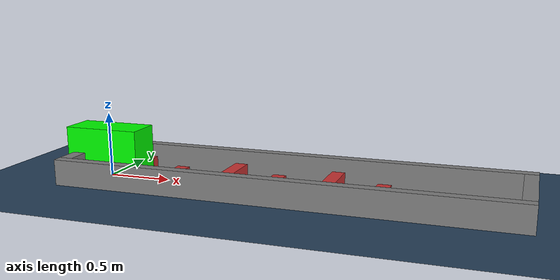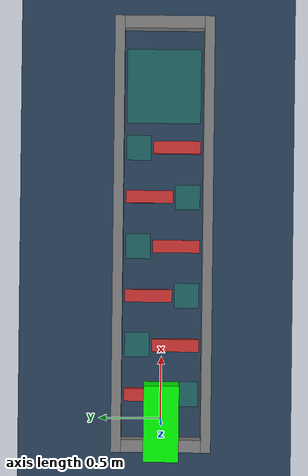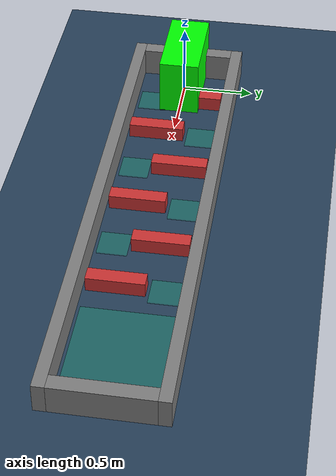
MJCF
<mujoco model="go1 scene">

  <worldbody>
    <light pos="0 0 1.5" dir="0 0 -1" directional="true" />
    <geom name="floor" size="0 0 0.05" type="plane" material="groundplane" friction=".5 0.005 0.001"
      priority="2" condim="4" />

    <body name="robot" pos="0. 0.0 .2" euler="0 0 0">
      <joint name="joint_x" type="slide" pos="0 0 0" axis="1 0 0" />
      <joint name="joint_y" type="slide" pos="0 0 0" axis="0 1 0" />
      <joint name="joint_z" type="hinge" pos="0 0 0" axis="0 0 1" />
      <geom name="robot" type="box" size="0.3 0.14 0.2" mass=".1" material="robot" condim="4" />
    </body>

  </worldbody>

  <include file="./push/turning_interactions/6.xml" />

  <statistic center="0 0 0.1" extent="0.8"/>

  <visual>
    <headlight diffuse="0.6 0.6 0.6" ambient="0.3 0.3 0.3" specular="0 0 0"/>
    <rgba haze="0.15 0.25 0.35 1"/>
    <global azimuth="120" elevation="-20"/>
  </visual>

  <asset>
    <material name="robot" rgba="0.0 1.0 0.0 1"/>
    <texture type="skybox" builtin="gradient" rgb1="0.3 0.5 0.7" rgb2="0 0 0" width="512"
      height="3072" />
    <texture type="2d" name="groundplane" builtin="checker" mark="edge" rgb1="0.2 0.3 0.4"
      rgb2="0.1 0.2 0.3"
      markrgb="0.8 0.8 0.8" width="300" height="300" />
    <material name="groundplane" texture="groundplane" texuniform="true" texrepeat="5 5"
      reflectance="0.2" />

  </asset>

  <actuator>
    <velocity name="actuator_x" joint="joint_x" gear="1" />
    <velocity name="actuator_y" joint="joint_y" gear="1" />
    <velocity name="actuator_z" joint="joint_z" gear="1" />
  </actuator>

</mujoco>

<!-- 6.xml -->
<mujoco>
  <option timestep="0.01" integrator="RK4" />
  <worldbody>
    <light pos="0 0 1.5" dir="0 0 -1" directional="true" />
    <geom name="floor" size="0 0 0.05" type="plane" material="groundplane" friction=".5 0.005 0.001"
      priority="2" condim="4" />
  </worldbody>

  <worldbody>

    <body name="ball" pos=".0 0 .05">
      <geom name="gball_0" type="sphere" size="0.02" mass="5." material="BallMat"
        friction=".5 0.005 0.001 " condim="4" />
      <site name="sensor_ball" />
      <joint name="joint_x" type="slide" pos="0 0 0" axis="1 0 0" />
      <joint name="joint_y" type="slide" pos="0 0 0" axis="0 1 0" />
    </body>

    <body name="wall_1" pos="0.2 0.11 .05">
      <geom name="wall_1" type="box" size="0.05 0.19 0.05" mass=".1" material="static" condim="4" />
    </body>

    <body name="wall_2" pos="0.6 -0.11 .05">
      <geom name="wall_2" type="box" size="0.05 0.19 0.05" mass=".1" material="static" condim="4" />
    </body>

    <body name="wall_3" pos="1.0 0.11 .05">
      <geom name="wall_3" type="box" size="0.05 0.19 0.05" mass=".1" material="static" condim="4" />
    </body>

    <body name="wall_4" pos="1.4 -0.11 .05">
      <geom name="wall_4" type="box" size="0.05 0.19 0.05" mass=".1" material="static" condim="4" />
    </body>

    <body name="wall_5" pos="1.8 0.11 .05">
      <geom name="wall_5" type="box" size="0.05 0.19 0.05" mass=".1" material="static" condim="4" />
    </body>

    <body name="wall_6" pos="2.2 -0.11 .05">
      <geom name="wall_6" type="box" size="0.05 0.19 0.05" mass=".1" material="static" condim="4" />
    </body>

    <body name="case" pos="0 0 0.1">
      <geom name="gcase_a" type="box" size="0.05 0.32 0.1" pos="-.2 0 0" />
      <geom name="gcase_b" type="box" size="0.05 0.32 0.1" pos="3.2 0 0" />
      <geom name="gcase_c" type="box" size="1.75 0.04 0.1" pos="1.5 .36 0" />
      <geom name="gcase_d" type="box" size="1.75 0.04 0.1" pos="1.5 -.36 0" />
    </body>

    <site name="target1" type="box" pos="0.2 -0.2 0.0" size="0.1 0.1" rgba="0 1 0.6 0.2" />
    <site name="target2" type="box" pos="0.6 0.2 0.0" size="0.1 0.1" rgba="0 1 0.6 0.2" />
    <site name="target3" type="box" pos="1.0 -0.2 0.0" size="0.1 0.1" rgba="0 1 0.6 0.2" />
    <site name="target4" type="box" pos="1.4 0.2 0.0" size="0.1 0.1" rgba="0 1 0.6 0.2" />
    <site name="target5" type="box" pos="1.8 -0.2 0.0" size="0.1 0.1" rgba="0 1 0.6 0.2" />
    <site name="target6" type="box" pos="2.2 0.2 0.0" size="0.1 0.1" rgba="0 1 0.6 0.2" />
    <site name="target7" type="box" pos="2.7 0.0 0.0" size="0.3 0.3" rgba="0 1 0.6 0.2" />

  </worldbody>

  <actuator>
    <motor name="actuator_x" joint="joint_x" gear="1" />
    <motor name="actuator_y" joint="joint_y" gear="1" />
  </actuator>

  <asset>
    <!-- Materials for visualization -->
    <material name="MatPlane" rgba="0.8 0.9 0.8 1" />
    <material name="movable" rgba="0.94 1.0 0.0 1" />
    <material name="static" rgba="0.8 0.2 0.2 1" />
    <material name="BallMat" rgba="0.2 0.2 0.8 1" />

    <texture type="skybox" builtin="gradient" rgb1="0.3 0.5 0.7" rgb2="0 0 0" width="512"
      height="3072" />
    <texture type="2d" name="groundplane" builtin="checker" mark="edge" rgb1="0.2 0.3 0.4"
      rgb2="0.1 0.2 0.3"
      markrgb="0.8 0.8 0.8" width="300" height="300" />
    <material name="groundplane" texture="groundplane" texuniform="true" texrepeat="5 5"
      reflectance="0.2" />
  </asset>

  <visual>
    <headlight diffuse="0.6 0.6 0.6" ambient="0.3 0.3 0.3" specular="0 0 0" />
    <rgba haze="0.15 0.25 0.35 1" />
    <global azimuth="60" elevation="-20" />
  </visual>

  <sensor>
    <velocimeter name="sensor_ball" site="sensor_ball" />
  </sensor>

</mujoco>
